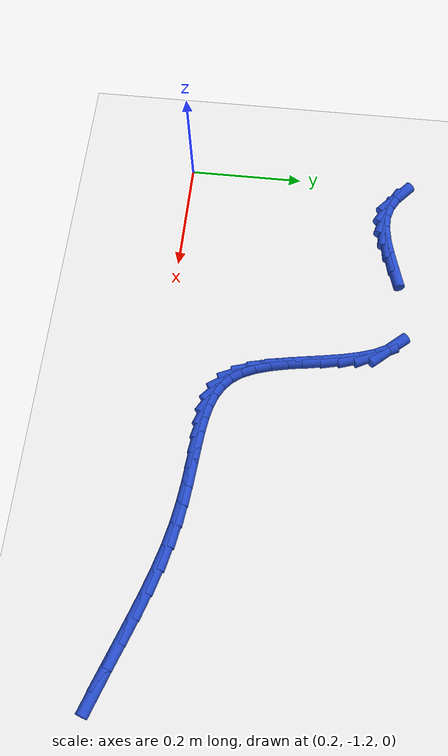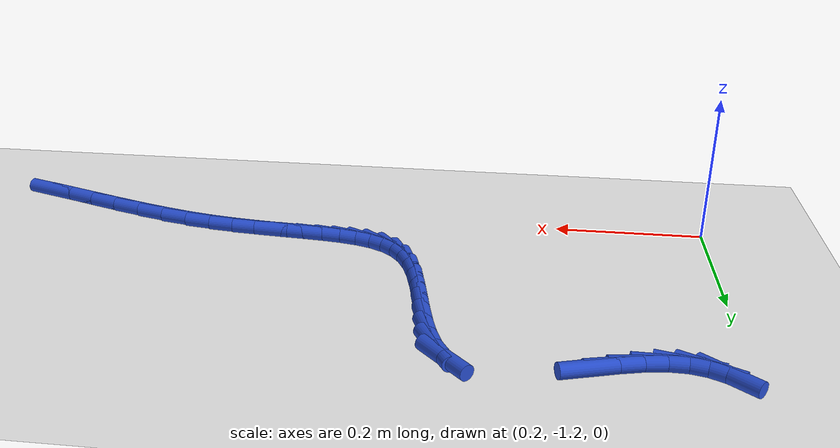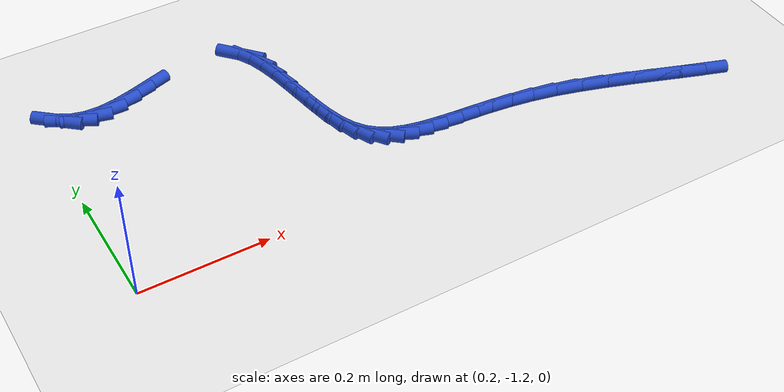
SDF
<sdf version="1.6">
 <world name="default">
  <model name="ground_plane">
   <static>1</static>
   <link name="link">
    <collision name="collision">
     <geometry><plane><normal>0 0 1</normal><size>100 100</size></plane></geometry>
     <surface><friction><ode><mu>100</mu><mu2>50</mu2></ode></friction></surface>
    </collision>
    <visual name="visual">
     <cast_shadows>0</cast_shadows>
     <geometry><plane><normal>0 0 1</normal><size>100 100</size></plane></geometry>
     <material>
      <script><uri>file://media/materials/scripts/gazebo.material</uri><name>Gazebo/WhiteGlow</name></script>
     </material>
    </visual>
   </link>
  </model>
  <model name="line">
   <link name="link_209">
    <pose>1.1510282069627644 -1.2224426649532085 0.01 0 1.57 -0.3322842898173651</pose>
    <collision name="collision">
     <geometry><cylinder><radius>0.01</radius><length>0.08</length></cylinder></geometry>
    </collision>
    <visual name="visual">
     <material>
      <script><name>Gazebo/Blue</name><uri>file://media/materials/scripts/gazebo.material</uri></script>
     </material>
     <geometry><cylinder><radius>0.01</radius><length>0.08</length></cylinder></geometry>
    </visual>
   </link>
   <link name="link_210">
    <pose>1.116762534901119 -1.2106182955966447 0.01 0 1.57 -0.3434839224651792</pose>
    <collision name="collision">
     <geometry><cylinder><radius>0.01</radius><length>0.08</length></cylinder></geometry>
    </collision>
    <visual name="visual">
     <material>
      <script><name>Gazebo/Blue</name><uri>file://media/materials/scripts/gazebo.material</uri></script>
     </material>
     <geometry><cylinder><radius>0.01</radius><length>0.08</length></cylinder></geometry>
    </visual>
   </link>
   <link name="link_211">
    <pose>1.0796723059328266 -1.197352545121895 0.01 0 1.57 -0.3415930312809581</pose>
    <collision name="collision">
     <geometry><cylinder><radius>0.01</radius><length>0.08</length></cylinder></geometry>
    </collision>
    <visual name="visual">
     <material>
      <script><name>Gazebo/Blue</name><uri>file://media/materials/scripts/gazebo.material</uri></script>
     </material>
     <geometry><cylinder><radius>0.01</radius><length>0.08</length></cylinder></geometry>
    </visual>
   </link>
   <link name="link_212">
    <pose>1.0406369475691695 -1.1834742941275325 0.01 0 1.57 -0.32835331857294636</pose>
    <collision name="collision">
     <geometry><cylinder><radius>0.01</radius><length>0.08</length></cylinder></geometry>
    </collision>
    <visual name="visual">
     <material>
      <script><name>Gazebo/Blue</name><uri>file://media/materials/scripts/gazebo.material</uri></script>
     </material>
     <geometry><cylinder><radius>0.01</radius><length>0.08</length></cylinder></geometry>
    </visual>
   </link>
   <link name="link_213">
    <pose>1.0005358873214307 -1.16981242321213 0.01 0 1.57 -0.30349120231827753</pose>
    <collision name="collision">
     <geometry><cylinder><radius>0.01</radius><length>0.08</length></cylinder></geometry>
    </collision>
    <visual name="visual">
     <material>
      <script><name>Gazebo/Blue</name><uri>file://media/materials/scripts/gazebo.material</uri></script>
     </material>
     <geometry><cylinder><radius>0.01</radius><length>0.08</length></cylinder></geometry>
    </visual>
   </link>
   <link name="link_214">
    <pose>0.9602485527008928 -1.1571958129742608 0.01 0 1.57 -0.26493645774822566</pose>
    <collision name="collision">
     <geometry><cylinder><radius>0.01</radius><length>0.08</length></cylinder></geometry>
    </collision>
    <visual name="visual">
     <material>
      <script><name>Gazebo/Blue</name><uri>file://media/materials/scripts/gazebo.material</uri></script>
     </material>
     <geometry><cylinder><radius>0.01</radius><length>0.08</length></cylinder></geometry>
    </visual>
   </link>
   <link name="link_215">
    <pose>0.9206543712188388 -1.1464533440124973 0.01 0 1.57 -0.21045421692712013</pose>
    <collision name="collision">
     <geometry><cylinder><radius>0.01</radius><length>0.08</length></cylinder></geometry>
    </collision>
    <visual name="visual">
     <material>
      <script><name>Gazebo/Blue</name><uri>file://media/materials/scripts/gazebo.material</uri></script>
     </material>
     <geometry><cylinder><radius>0.01</radius><length>0.08</length></cylinder></geometry>
    </visual>
   </link>
   <link name="link_216">
    <pose>0.8825830363773693 -1.1383206466474434 0.01 0 1.57 -0.1557129955876761</pose>
    <collision name="collision">
     <geometry><cylinder><radius>0.01</radius><length>0.08</length></cylinder></geometry>
    </collision>
    <visual name="visual">
     <material>
      <script><name>Gazebo/Blue</name><uri>file://media/materials/scripts/gazebo.material</uri></script>
     </material>
     <geometry><cylinder><radius>0.01</radius><length>0.08</length></cylinder></geometry>
    </visual>
   </link>
   <link name="link_217">
    <pose>0.8463869545690303 -1.1326384473628814 0.01 0 1.57 -0.11313202347010393</pose>
    <collision name="collision">
     <geometry><cylinder><radius>0.01</radius><length>0.08</length></cylinder></geometry>
    </collision>
    <visual name="visual">
     <material>
      <script><name>Gazebo/Blue</name><uri>file://media/materials/scripts/gazebo.material</uri></script>
     </material>
     <geometry><cylinder><radius>0.01</radius><length>0.08</length></cylinder></geometry>
    </visual>
   </link>
   <link name="link_218">
    <pose>0.8121525898453679 -1.1287488360430047 0.01 0 1.57 -0.08554435719853248</pose>
    <collision name="collision">
     <geometry><cylinder><radius>0.01</radius><length>0.08</length></cylinder></geometry>
    </collision>
    <visual name="visual">
     <material>
      <script><name>Gazebo/Blue</name><uri>file://media/materials/scripts/gazebo.material</uri></script>
     </material>
     <geometry><cylinder><radius>0.01</radius><length>0.08</length></cylinder></geometry>
    </visual>
   </link>
   <link name="link_219">
    <pose>0.7799635285829227 -1.1259885069886166 0.01 0 1.57 -0.07617763289057934</pose>
    <collision name="collision">
     <geometry><cylinder><radius>0.01</radius><length>0.08</length></cylinder></geometry>
    </collision>
    <visual name="visual">
     <material>
      <script><name>Gazebo/Blue</name><uri>file://media/materials/scripts/gazebo.material</uri></script>
     </material>
     <geometry><cylinder><radius>0.01</radius><length>0.08</length></cylinder></geometry>
    </visual>
   </link>
   <link name="link_220">
    <pose>0.7499033571582371 -1.12369415450052 0.01 0 1.57 -0.08923769205724254</pose>
    <collision name="collision">
     <geometry><cylinder><radius>0.01</radius><length>0.08</length></cylinder></geometry>
    </collision>
    <visual name="visual">
     <material>
      <script><name>Gazebo/Blue</name><uri>file://media/materials/scripts/gazebo.material</uri></script>
     </material>
     <geometry><cylinder><radius>0.01</radius><length>0.08</length></cylinder></geometry>
    </visual>
   </link>
   <link name="link_221">
    <pose>0.7220556619478529 -1.1212024728795176 0.01 0 1.57 -0.130452657782674</pose>
    <collision name="collision">
     <geometry><cylinder><radius>0.01</radius><length>0.08</length></cylinder></geometry>
    </collision>
    <visual name="visual">
     <material>
      <script><name>Gazebo/Blue</name><uri>file://media/materials/scripts/gazebo.material</uri></script>
     </material>
     <geometry><cylinder><radius>0.01</radius><length>0.08</length></cylinder></geometry>
    </visual>
   </link>
   <link name="link_222">
    <pose>0.6965040293283118 -1.1178501564264127 0.01 0 1.57 -0.20741128902288752</pose>
    <collision name="collision">
     <geometry><cylinder><radius>0.01</radius><length>0.08</length></cylinder></geometry>
    </collision>
    <visual name="visual">
     <material>
      <script><name>Gazebo/Blue</name><uri>file://media/materials/scripts/gazebo.material</uri></script>
     </material>
     <geometry><cylinder><radius>0.01</radius><length>0.08</length></cylinder></geometry>
    </visual>
   </link>
   <link name="link_223">
    <pose>0.6733320456761563 -1.1129738994420093 0.01 0 1.57 -0.32871334244067096</pose>
    <collision name="collision">
     <geometry><cylinder><radius>0.01</radius><length>0.08</length></cylinder></geometry>
    </collision>
    <visual name="visual">
     <material>
      <script><name>Gazebo/Blue</name><uri>file://media/materials/scripts/gazebo.material</uri></script>
     </material>
     <geometry><cylinder><radius>0.01</radius><length>0.08</length></cylinder></geometry>
    </visual>
   </link>
   <link name="link_224">
    <pose>0.652623297367928 -1.1059103962271095 0.01 0 1.57 -0.4996670383194418</pose>
    <collision name="collision">
     <geometry><cylinder><radius>0.01</radius><length>0.08</length></cylinder></geometry>
    </collision>
    <visual name="visual">
     <material>
      <script><name>Gazebo/Blue</name><uri>file://media/materials/scripts/gazebo.material</uri></script>
     </material>
     <geometry><cylinder><radius>0.01</radius><length>0.08</length></cylinder></geometry>
    </visual>
   </link>
   <link name="link_225">
    <pose>0.6344613707801692 -1.095996341082517 0.01 0 1.57 -0.7128857769132253</pose>
    <collision name="collision">
     <geometry><cylinder><radius>0.01</radius><length>0.08</length></cylinder></geometry>
    </collision>
    <visual name="visual">
     <material>
      <script><name>Gazebo/Blue</name><uri>file://media/materials/scripts/gazebo.material</uri></script>
     </material>
     <geometry><cylinder><radius>0.01</radius><length>0.08</length></cylinder></geometry>
    </visual>
   </link>
   <link name="link_226">
    <pose>0.6189298522894211 -1.0825684283090342 0.01 0 1.57 -0.9414863421925374</pose>
    <collision name="collision">
     <geometry><cylinder><radius>0.01</radius><length>0.08</length></cylinder></geometry>
    </collision>
    <visual name="visual">
     <material>
      <script><name>Gazebo/Blue</name><uri>file://media/materials/scripts/gazebo.material</uri></script>
     </material>
     <geometry><cylinder><radius>0.01</radius><length>0.08</length></cylinder></geometry>
    </visual>
   </link>
   <link name="link_227">
    <pose>0.6061123282722267 -1.0649633522074653 0.01 0 1.57 -1.144827222132433</pose>
    <collision name="collision">
     <geometry><cylinder><radius>0.01</radius><length>0.08</length></cylinder></geometry>
    </collision>
    <visual name="visual">
     <material>
      <script><name>Gazebo/Blue</name><uri>file://media/materials/scripts/gazebo.material</uri></script>
     </material>
     <geometry><cylinder><radius>0.01</radius><length>0.08</length></cylinder></geometry>
    </visual>
   </link>
   <link name="link_228">
    <pose>0.5960140103827751 -1.0427081686054998 0.01 0 1.57 -1.279215843480285</pose>
    <collision name="collision">
     <geometry><cylinder><radius>0.01</radius><length>0.08</length></cylinder></geometry>
    </collision>
    <visual name="visual">
     <material>
      <script><name>Gazebo/Blue</name><uri>file://media/materials/scripts/gazebo.material</uri></script>
     </material>
     <geometry><cylinder><radius>0.01</radius><length>0.08</length></cylinder></geometry>
    </visual>
   </link>
   <link name="link_229">
    <pose>0.5881523900349905 -1.01651453937272 0.01 0 1.57 -1.3568050908440996</pose>
    <collision name="collision">
     <geometry><cylinder><radius>0.01</radius><length>0.08</length></cylinder></geometry>
    </collision>
    <visual name="visual">
     <material>
      <script><name>Gazebo/Blue</name><uri>file://media/materials/scripts/gazebo.material</uri></script>
     </material>
     <geometry><cylinder><radius>0.01</radius><length>0.08</length></cylinder></geometry>
    </visual>
   </link>
   <link name="link_230">
    <pose>0.5818576540956807 -0.9875490636149966 0.01 0 1.57 -1.3960167616064332</pose>
    <collision name="collision">
     <geometry><cylinder><radius>0.01</radius><length>0.08</length></cylinder></geometry>
    </collision>
    <visual name="visual">
     <material>
      <script><name>Gazebo/Blue</name><uri>file://media/materials/scripts/gazebo.material</uri></script>
     </material>
     <geometry><cylinder><radius>0.01</radius><length>0.08</length></cylinder></geometry>
    </visual>
   </link>
   <link name="link_231">
    <pose>0.5764596021529326 -0.9569792810854714 0.01 0 1.57 -1.4055280923654374</pose>
    <collision name="collision">
     <geometry><cylinder><radius>0.01</radius><length>0.08</length></cylinder></geometry>
    </collision>
    <visual name="visual">
     <material>
      <script><name>Gazebo/Blue</name><uri>file://media/materials/scripts/gazebo.material</uri></script>
     </material>
     <geometry><cylinder><radius>0.01</radius><length>0.08</length></cylinder></geometry>
    </visual>
   </link>
   <link name="link_232">
    <pose>0.5712880337948332 -0.9259727315372842 0.01 0 1.57 -1.387408975249752</pose>
    <collision name="collision">
     <geometry><cylinder><radius>0.01</radius><length>0.08</length></cylinder></geometry>
    </collision>
    <visual name="visual">
     <material>
      <script><name>Gazebo/Blue</name><uri>file://media/materials/scripts/gazebo.material</uri></script>
     </material>
     <geometry><cylinder><radius>0.01</radius><length>0.08</length></cylinder></geometry>
    </visual>
   </link>
   <link name="link_233">
    <pose>0.5656727486094691 -0.8956969547235762 0.01 0 1.57 -1.3379649873996626</pose>
    <collision name="collision">
     <geometry><cylinder><radius>0.01</radius><length>0.08</length></cylinder></geometry>
    </collision>
    <visual name="visual">
     <material>
      <script><name>Gazebo/Blue</name><uri>file://media/materials/scripts/gazebo.material</uri></script>
     </material>
     <geometry><cylinder><radius>0.01</radius><length>0.08</length></cylinder></geometry>
    </visual>
   </link>
   <link name="link_234">
    <pose>0.5589435461849278 -0.8673194903974881 0.01 0 1.57 -1.2463417751180612</pose>
    <collision name="collision">
     <geometry><cylinder><radius>0.01</radius><length>0.08</length></cylinder></geometry>
    </collision>
    <visual name="visual">
     <material>
      <script><name>Gazebo/Blue</name><uri>file://media/materials/scripts/gazebo.material</uri></script>
     </material>
     <geometry><cylinder><radius>0.01</radius><length>0.08</length></cylinder></geometry>
    </visual>
   </link>
   <link name="link_235">
    <pose>0.5504302261092963 -0.842007878312162 0.01 0 1.57 -1.0910170150483813</pose>
    <collision name="collision">
     <geometry><cylinder><radius>0.01</radius><length>0.08</length></cylinder></geometry>
    </collision>
    <visual name="visual">
     <material>
      <script><name>Gazebo/Blue</name><uri>file://media/materials/scripts/gazebo.material</uri></script>
     </material>
     <geometry><cylinder><radius>0.01</radius><length>0.08</length></cylinder></geometry>
    </visual>
   </link>
   <link name="link_236">
    <pose>0.5394625879706612 -0.8209296582207377 0.01 0 1.57 -0.8385948622968998</pose>
    <collision name="collision">
     <geometry><cylinder><radius>0.01</radius><length>0.08</length></cylinder></geometry>
    </collision>
    <visual name="visual">
     <material>
      <script><name>Gazebo/Blue</name><uri>file://media/materials/scripts/gazebo.material</uri></script>
     </material>
     <geometry><cylinder><radius>0.01</radius><length>0.08</length></cylinder></geometry>
    </visual>
   </link>
   <link name="link_243">
    <pose>0.37701704194183444 -0.8204622049637975 0.01 0 1.57 0.3066473521765901</pose>
    <collision name="collision">
     <geometry><cylinder><radius>0.01</radius><length>0.08</length></cylinder></geometry>
    </collision>
    <visual name="visual">
     <material>
      <script><name>Gazebo/Blue</name><uri>file://media/materials/scripts/gazebo.material</uri></script>
     </material>
     <geometry><cylinder><radius>0.01</radius><length>0.08</length></cylinder></geometry>
    </visual>
   </link>
   <link name="link_244">
    <pose>0.34813506260422794 -0.8296072445695428 0.01 0 1.57 0.25511123318948226</pose>
    <collision name="collision">
     <geometry><cylinder><radius>0.01</radius><length>0.08</length></cylinder></geometry>
    </collision>
    <visual name="visual">
     <material>
      <script><name>Gazebo/Blue</name><uri>file://media/materials/scripts/gazebo.material</uri></script>
     </material>
     <geometry><cylinder><radius>0.01</radius><length>0.08</length></cylinder></geometry>
    </visual>
   </link>
   <link name="link_245">
    <pose>0.32015469768568044 -0.8369043437349172 0.01 0 1.57 0.15270119533310675</pose>
    <collision name="collision">
     <geometry><cylinder><radius>0.01</radius><length>0.08</length></cylinder></geometry>
    </collision>
    <visual name="visual">
     <material>
      <script><name>Gazebo/Blue</name><uri>file://media/materials/scripts/gazebo.material</uri></script>
     </material>
     <geometry><cylinder><radius>0.01</radius><length>0.08</length></cylinder></geometry>
    </visual>
   </link>
   <link name="link_246">
    <pose>0.293860083401921 -0.8409510651213978 0.01 0 1.57 -0.02255573461408259</pose>
    <collision name="collision">
     <geometry><cylinder><radius>0.01</radius><length>0.08</length></cylinder></geometry>
    </collision>
    <visual name="visual">
     <material>
      <script><name>Gazebo/Blue</name><uri>file://media/materials/scripts/gazebo.material</uri></script>
     </material>
     <geometry><cylinder><radius>0.01</radius><length>0.08</length></cylinder></geometry>
    </visual>
   </link>
   <link name="link_247">
    <pose>0.26999799371300337 -0.8404127468641329 0.01 0 1.57 -0.2523323031527216</pose>
    <collision name="collision">
     <geometry><cylinder><radius>0.01</radius><length>0.08</length></cylinder></geometry>
    </collision>
    <visual name="visual">
     <material>
      <script><name>Gazebo/Blue</name><uri>file://media/materials/scripts/gazebo.material</uri></script>
     </material>
     <geometry><cylinder><radius>0.01</radius><length>0.08</length></cylinder></geometry>
    </visual>
   </link>
   <link name="link_248">
    <pose>0.24877200260583107 -0.8349400968199806 0.01 0 1.57 -0.48943398533217264</pose>
    <collision name="collision">
     <geometry><cylinder><radius>0.01</radius><length>0.08</length></cylinder></geometry>
    </collision>
    <visual name="visual">
     <material>
      <script><name>Gazebo/Blue</name><uri>file://media/materials/scripts/gazebo.material</uri></script>
     </material>
     <geometry><cylinder><radius>0.01</radius><length>0.08</length></cylinder></geometry>
    </visual>
   </link>
   <link name="link_249">
    <pose>0.22997548872379145 -0.8249279209523273 0.01 0 1.57 -0.7059756231244358</pose>
    <collision name="collision">
     <geometry><cylinder><radius>0.01</radius><length>0.08</length></cylinder></geometry>
    </collision>
    <visual name="visual">
     <material>
      <script><name>Gazebo/Blue</name><uri>file://media/materials/scripts/gazebo.material</uri></script>
     </material>
     <geometry><cylinder><radius>0.01</radius><length>0.08</length></cylinder></geometry>
    </visual>
   </link>
  </model>
 </world>
</sdf>
